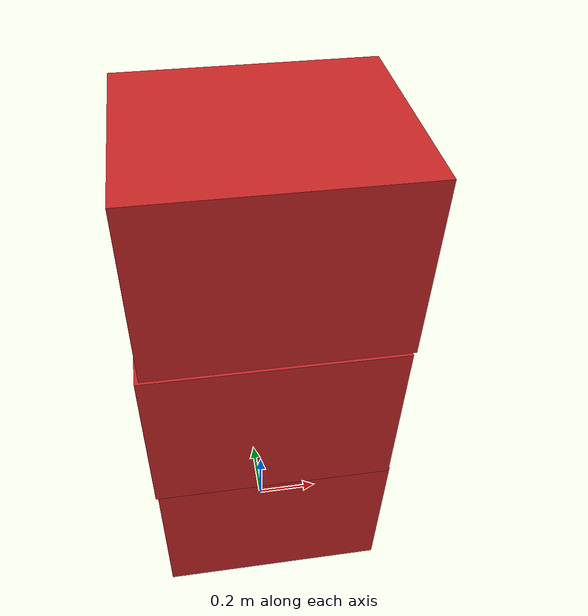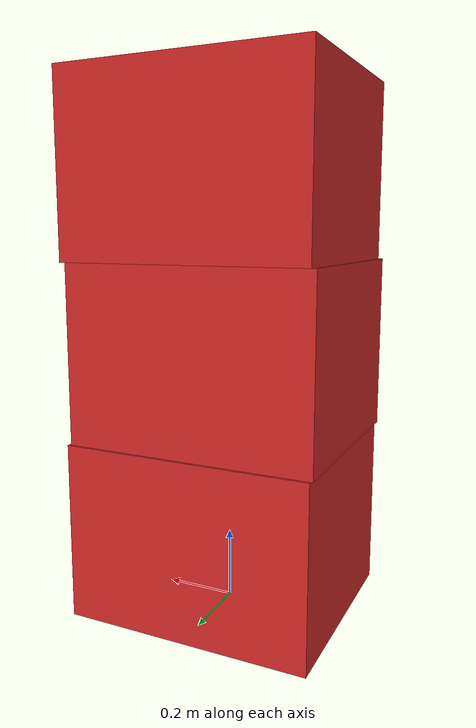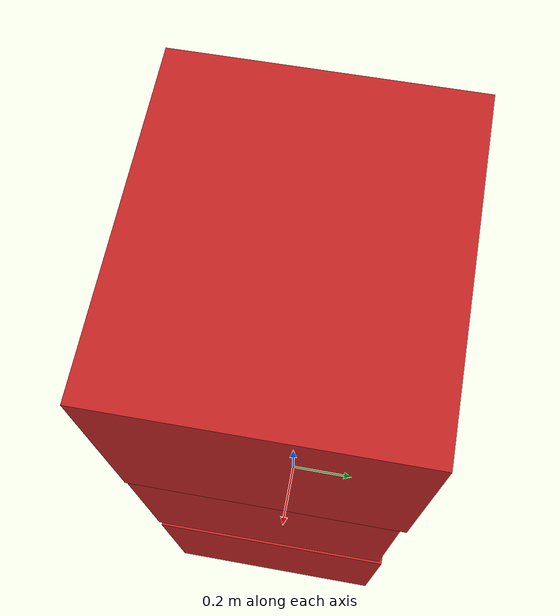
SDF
<?xml version="1.0" encoding="UTF-8"?>
<sdf version='1.4'>
    <model name="baggage_A_x3">
        <model name="baggage_A_0">
            <static>true</static>
            <link name="link">
                <collision name="collision">
                    <geometry>
                    <box>
                        <size>0.7 0.6 0.5</size>
                    </box>
                    </geometry>
                </collision>
                <visual name="visual">
                    <geometry>
                    <box>
                        <size>0.7 0.6 0.5</size>
                    </box>
                    </geometry>
                    <material>
                    <script>
                        <uri>file://media/materials/scripts/gazebo.material</uri>
                        <name>Gazebo/Red</name>
                    </script>
                    </material>
                </visual>
            </link>
            <pose frame=''>0 0 0.25 0 0 0</pose>
        </model>
        <model name="baggage_A_1">
            <static>true</static>
            <link name="link">
                <collision name="collision">
                    <geometry>
                    <box>
                        <size>0.7 0.6 0.5</size>
                    </box>
                    </geometry>
                </collision>
                <visual name="visual">
                    <geometry>
                    <box>
                        <size>0.7 0.6 0.5</size>
                    </box>
                    </geometry>
                    <material>
                    <script>
                        <uri>file://media/materials/scripts/gazebo.material</uri>
                        <name>Gazebo/Red</name>
                    </script>
                    </material>
                </visual>
            </link>
            <pose frame=''>-0.0060 -0.0077 0.75 0 0 0</pose>
        </model>
        <model name="baggage_A_2">
            <static>true</static>
            <link name="link">
                <collision name="collision">
                    <geometry>
                    <box>
                        <size>0.7 0.6 0.5</size>
                    </box>
                    </geometry>
                </collision>
                <visual name="visual">
                    <geometry>
                    <box>
                        <size>0.7 0.6 0.5</size>
                    </box>
                    </geometry>
                    <material>
                    <script>
                        <uri>file://media/materials/scripts/gazebo.material</uri>
                        <name>Gazebo/Red</name>
                    </script>
                    </material>
                </visual>
            </link>
            <pose frame=''>0.0045 0.0005 1.25 0 0 0</pose>
        </model>
    </model>
</sdf>
